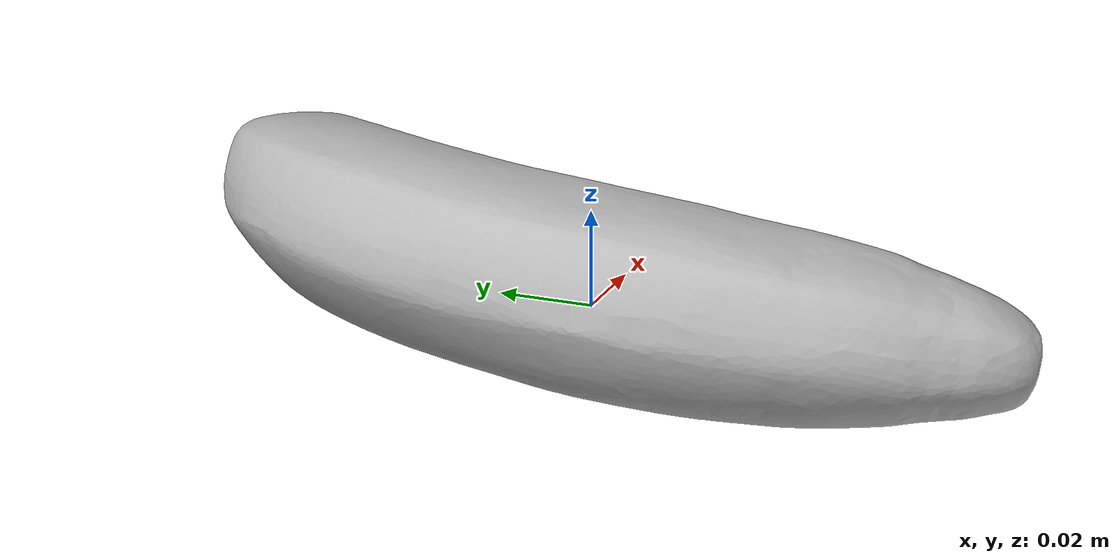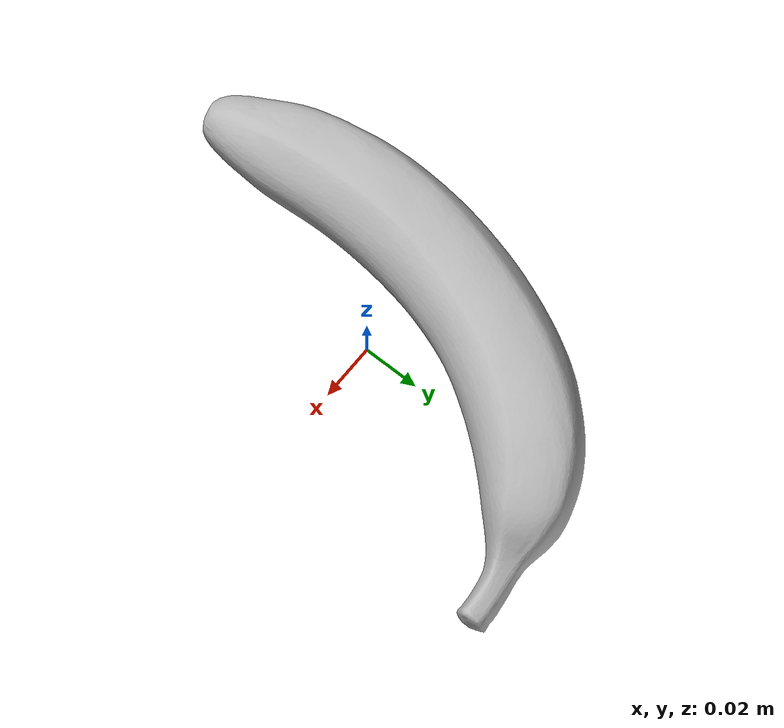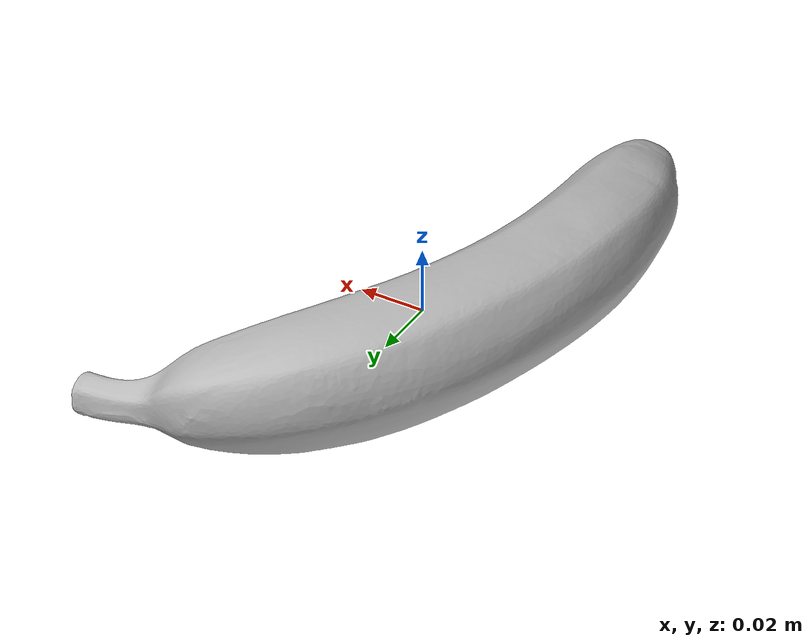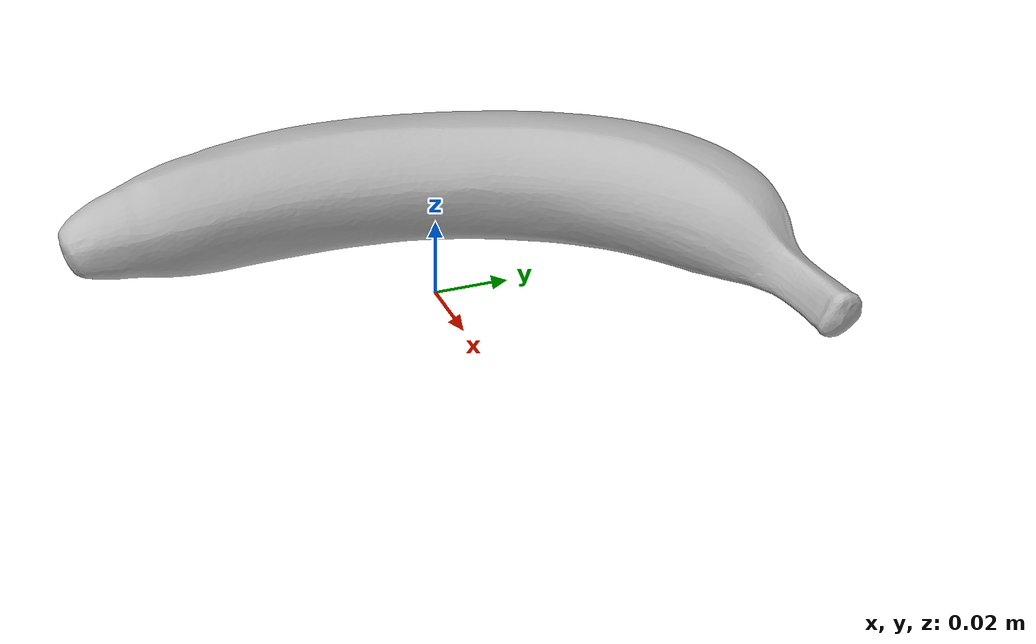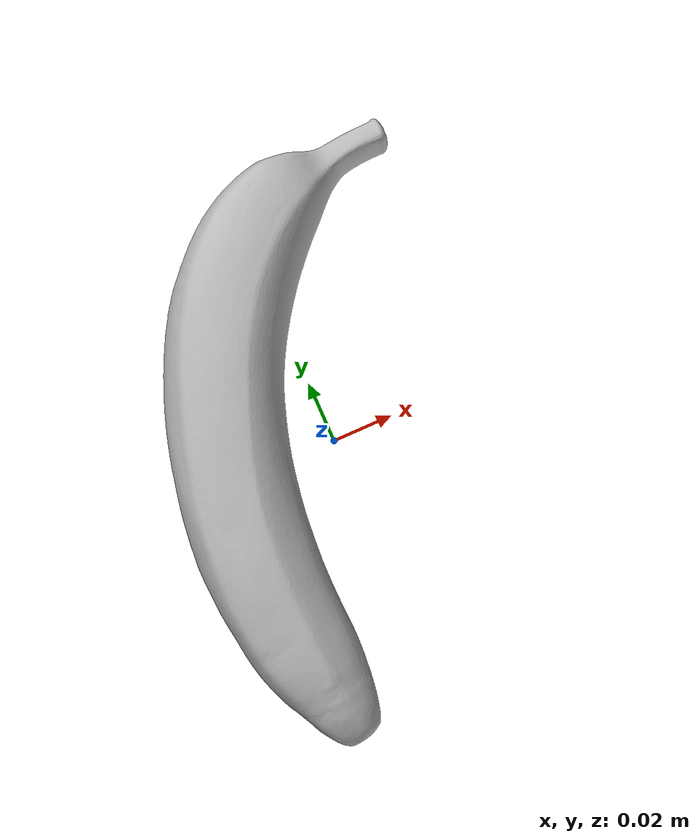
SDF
<?xml version="1.0" ?>
<sdf version='1.8'>
  <model name='ycb_011_banana'>
    <link name='body'>
      <inertial>
        <mass>0.066</mass>
        <pose>-0.0214601025 0.0113176791 0.0173068892 0 0 0</pose>
        <inertia>
          <ixx>0.000144177765139</ixx>
          <ixy>-4.26007879811e-05</ixy>
          <ixz>1.02036376212e-06</ixz>
          <iyy>2.98060237306e-05</iyy>
          <iyz>-8.54340088435e-07</iyz>
          <izz>0.000164118296691</izz>
        </inertia>
      </inertial>
      <visual name='ycb_011_banana_visual'>
        <pose>-0.011524 0.007245 0.00018 0 0 0</pose>
        <geometry>
          <mesh>
            <uri>model://ycb_011_banana/meshes/textured.dae</uri>
          </mesh>
        </geometry>
      </visual>
      <collision name='ycb_011_banana_collision'>
        <pose>-0.011524 0.007245 0.00018 0 0 0</pose>
        <geometry>
          <mesh>
            <uri>model://ycb_011_banana/meshes/nontextured.stl</uri>
          </mesh>
        </geometry>
        <max_contacts>10</max_contacts>
        <surface>
          <contact>
            <ode>
              <kp>1e15</kp>
              <kd>1e13</kd>
            </ode>
          </contact>
        </surface>
      </collision>
    </link>
  </model>
</sdf>
